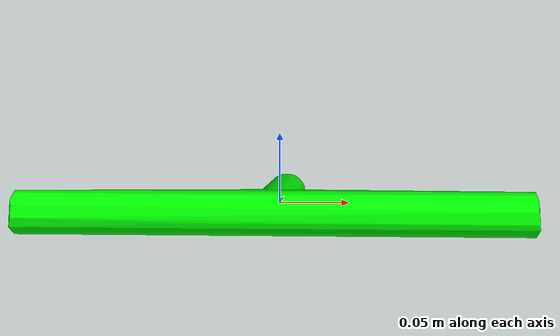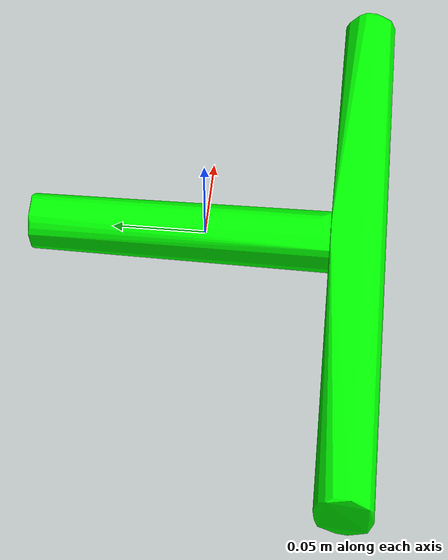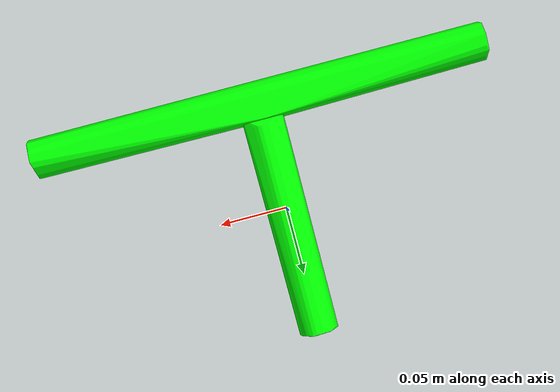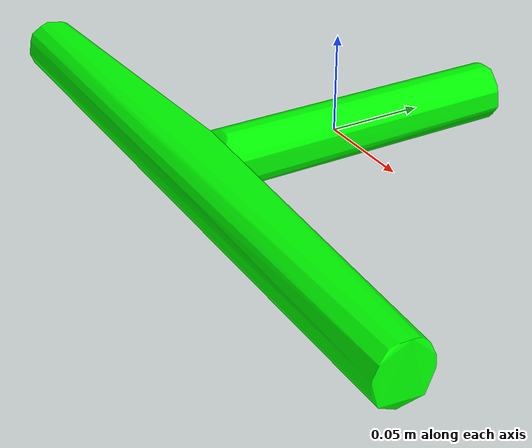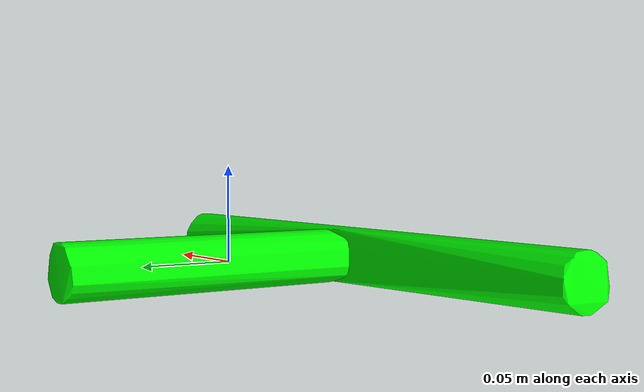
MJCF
<mujoco model="round_T_large_2">
  <asset>
    <mesh file="meshes/round_T_large_2_meshes/round_T_large_2_mesh_part_0.stl" name="round_T_large_2_mesh_part_0"/>
    <mesh file="meshes/round_T_large_2_meshes/round_T_large_2_mesh_part_1.stl" name="round_T_large_2_mesh_part_1"/>
  </asset>
  <worldbody>
    <body>
      <body name="collision">
        <geom condim="4" density="100" friction="1.5 0.3 0.1" group="1" mesh="round_T_large_2_mesh_part_0" pos="0 0 0" rgba="0 1 0 1" solimp="0.998 0.998 0.001" solref="0.002 1" type="mesh"/>
        <geom condim="4" density="100" friction="1.5 0.3 0.1" group="1" mesh="round_T_large_2_mesh_part_1" pos="0 0 0" rgba="0 1 0 1" solimp="0.998 0.998 0.001" solref="0.002 1" type="mesh"/>
      </body>
      <body name="visual">
        <geom conaffinity="0" contype="0" group="0" mass="0.0001" mesh="round_T_large_2_mesh_part_0" pos="0 0 0" rgba="0 1 0 1" type="mesh"/>
        <geom conaffinity="0" contype="0" group="0" mass="0.0001" mesh="round_T_large_2_mesh_part_1" pos="0 0 0" rgba="0 1 0 1" type="mesh"/>
      </body>
      <site name="bottom_site" pos="0 0 -0.06" rgba="0 0 0 0" size="0.005"/>
      <site name="top_site" pos="0 0 0.04" rgba="0 0 0 0" size="0.005"/>
      <site name="horizontal_radius_site" pos="0.025 0.025 0" rgba="0 0 0 0" size="0.005"/>
    </body>
  </worldbody>
</mujoco>
